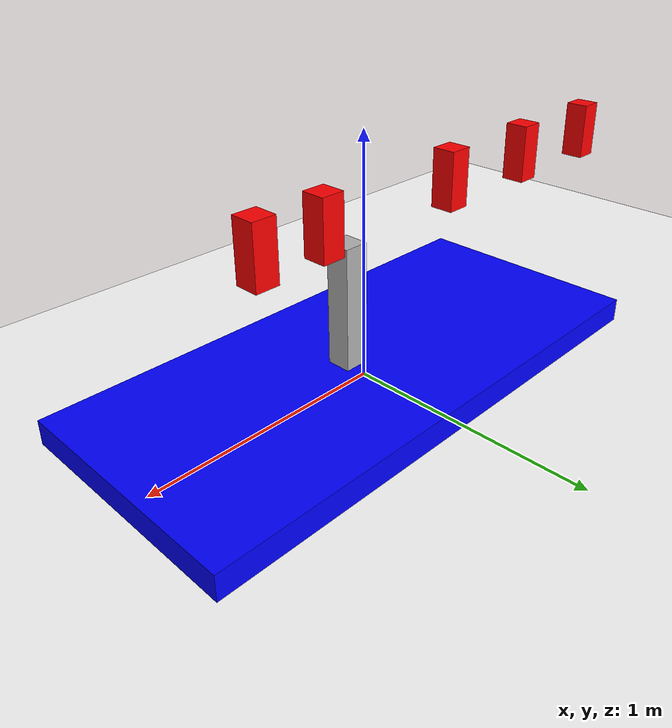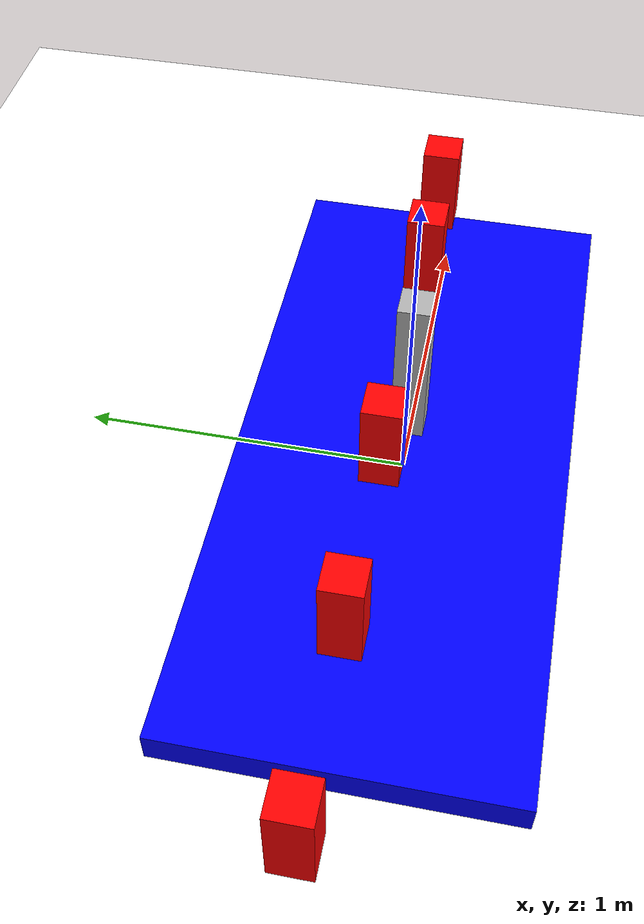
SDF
<?xml version="1.0" ?>
<sdf version="1.6">
  <world name="default">
    <physics name="fast" type="ignored">
      <real_time_factor>0</real_time_factor>
    </physics>

    <model name="ground_plane">
      <static>true</static>
      <link name="link">
        <pose>0 0 -0.5 0 0 0</pose>
        <collision name="collision">
          <geometry>
            <box>
              <size>100 100 1</size>
            </box>
          </geometry>
          <surface>
            <friction>
              <ode>
                <mu>100</mu>
                <mu2>50</mu2>
              </ode>
            </friction>
          </surface>
        </collision>
        <visual name="visual">
          <cast_shadows>false</cast_shadows>
          <geometry>
            <box>
              <size>100 100 1</size>
            </box>
          </geometry>
          <material>
            <ambient>1 1 1 1</ambient>
            <diffuse>1 1 1 1</diffuse>
            <specular>1 1 1 1</specular>
          </material>
        </visual>
      </link>
    </model>
    <model name="prismatic_model">
        <!-- A Heavy base keeps the joints from falling over -->
        <link name="heavy_base">
            <!-- position the base such that the bottom touches the floor -->
            <pose>0 0 0.05 0 0 0</pose>
            <inertial>
                <mass>100</mass> <!-- kg -->
                <inertia>
                    <!-- (mass / 12) * (y*y + z*z) -->
                    <ixx>8.4167</ixx>
                    <ixy>0</ixy>
                    <ixz>0</ixz>
                    <!-- (mass / 12) * (x*x + z*z) -->
                    <iyy>40.417</iyy>
                    <iyz>0</iyz>
                    <!-- (mass / 12) * (y*y + x*x) -->
                    <izz>48.667</izz>
                </inertia>
            </inertial>
            <!-- Same geometry as visual -->
            <collision name="heavy_base_collision">
                <geometry>
                    <box>
                        <size>2.2 1 0.1</size>
                    </box>
                </geometry>
            </collision>
            <!-- Same geometry as collision -->
            <visual name="heavy_base_visual">
                <geometry>
                    <box>
                        <size>2.2 1 0.1</size>
                    </box>
                </geometry>
                <material>
                  <ambient>0 0 1 1</ambient>
                  <diffuse>0 0 1 1</diffuse>
                  <specular>0 0 1 1</specular>
                </material>
            </visual>
        </link>

        <link name="prismatic_base">
            <!-- Put the bottom of base on top of the heavy base -->
            <pose >0.09 0 0.35 0 0 0</pose>
            <inertial>
                <inertia>
                    <!-- (mass / 12) * (y*y + z*z) -->
                    <ixx>0.021667</ixx>
                    <ixy>0</ixy>
                    <ixz>0</ixz>
                    <!-- (mass / 12) * (x*x + z*z) -->
                    <iyy>0.021667</iyy>
                    <iyz>0</iyz>
                    <!-- (mass / 12) * (y*y + x*x) -->
                    <izz>0.0016667</izz>
                </inertia>
            </inertial>
            <!-- Same geometry as visual -->
            <collision name="prismatic_base_collision">
                <geometry>
                    <box>
                        <size>0.1 0.1 0.5</size>
                    </box>
                </geometry>
            </collision>
            <!-- Same geometry as collision -->
            <visual name="prismatic_base_visual">
                <geometry>
                    <box>
                        <size>0.1 0.1 0.5</size>
                    </box>
                </geometry>
                <material>
                  <ambient>0.7 0.7 0.7 1</ambient>
                  <diffuse>0.7 0.7 0.7 1</diffuse>
                  <specular>0.7 0.7 0.7 1</specular>
                </material>
            </visual>
        </link>

        <joint name="prismatic_base_to_heavy_base" type="fixed">
            <parent>heavy_base</parent>
            <child>prismatic_base</child>
        </joint>

        <link name="prismatic_slide">
            <!-- Put the slide near the top of the base -->
            <pose >0.2 0 0.70 0 0 0</pose>
            <inertial>
                <inertia>
                    <!-- (mass / 12) * (y*y + z*z) -->
                    <ixx>0.0060417</ixx>
                    <ixy>0</ixy>
                    <ixz>0</ixz>
                    <!-- (mass / 12) * (x*x + z*z) -->
                    <iyy>0.0060417</iyy>
                    <iyz>0</iyz>
                    <!-- (mass / 12) * (y*y + x*x) -->
                    <izz>0.0016667</izz>
                </inertia>
            </inertial>
            <!-- Same geometry as visual -->
            <collision name="prismatic_slide_collision">
                <geometry>
                    <box>
                        <size>0.1 0.1 0.25</size>
                    </box>
                </geometry>
            </collision>
            <!-- Same geometry as collision -->
            <visual name="prismatic_slide_visual">
                <geometry>
                    <box>
                        <size>0.1 0.1 0.25</size>
                    </box>
                </geometry>
                <material>
                  <ambient>1 0 0 1</ambient>
                  <diffuse>1 0 0 1</diffuse>
                  <specular>1 0 0 1</specular>
                </material>
            </visual>
        </link>
`
        <link name="prismatic_slide_2">
            <!-- Put the slide near the top of the base -->
            <pose >0.5 0 0.70 0 0 0</pose>
            <inertial>
                <inertia>
                    <!-- (mass / 12) * (y*y + z*z) -->
                    <ixx>0.0060417</ixx>
                    <ixy>0</ixy>
                    <ixz>0</ixz>
                    <!-- (mass / 12) * (x*x + z*z) -->
                    <iyy>0.0060417</iyy>
                    <iyz>0</iyz>
                    <!-- (mass / 12) * (y*y + x*x) -->
                    <izz>0.0016667</izz>
                </inertia>
            </inertial>
            <!-- Same geometry as visual -->
            <collision name="prismatic_slide_collision">
                <geometry>
                    <box>
                        <size>0.1 0.1 0.25</size>
                    </box>
                </geometry>
            </collision>
            <!-- Same geometry as collision -->
            <visual name="prismatic_slide_visual">
                <geometry>
                    <box>
                        <size>0.1 0.1 0.25</size>
                    </box>
                </geometry>
                <material>
                  <ambient>1 0 0 1</ambient>
                  <diffuse>1 0 0 1</diffuse>
                  <specular>1 0 0 1</specular>
                </material>
            </visual>
        </link>

        <link name="revolute_link_1">
            <!-- Put the slide near the top of the base -->
            <pose >-0.5 0 0.70 0 0 0</pose>
            <inertial>
                <inertia>
                    <!-- (mass / 12) * (y*y + z*z) -->
                    <ixx>0.0060417</ixx>
                    <ixy>0</ixy>
                    <ixz>0</ixz>
                    <!-- (mass / 12) * (x*x + z*z) -->
                    <iyy>0.0060417</iyy>
                    <iyz>0</iyz>
                    <!-- (mass / 12) * (y*y + x*x) -->
                    <izz>0.0016667</izz>
                </inertia>
            </inertial>
            <!-- Same geometry as visual -->
            <collision name="prismatic_slide_collision">
                <geometry>
                    <box>
                        <size>0.1 0.1 0.25</size>
                    </box>
                </geometry>
            </collision>
            <!-- Same geometry as collision -->
            <visual name="prismatic_slide_visual">
                <geometry>
                    <box>
                        <size>0.1 0.1 0.25</size>
                    </box>
                </geometry>
                <material>
                  <ambient>1 0 0 1</ambient>
                  <diffuse>1 0 0 1</diffuse>
                  <specular>1 0 0 1</specular>
                </material>
            </visual>
        </link>

        <link name="revolute_link_2">
            <!-- Put the slide near the top of the base -->
            <pose >-1 0 0.70 0 0 0</pose>
            <inertial>
                <inertia>
                    <!-- (mass / 12) * (y*y + z*z) -->
                    <ixx>0.0060417</ixx>
                    <ixy>0</ixy>
                    <ixz>0</ixz>
                    <!-- (mass / 12) * (x*x + z*z) -->
                    <iyy>0.0060417</iyy>
                    <iyz>0</iyz>
                    <!-- (mass / 12) * (y*y + x*x) -->
                    <izz>0.0016667</izz>
                </inertia>
            </inertial>
            <!-- Same geometry as visual -->
            <collision name="prismatic_slide_collision">
                <geometry>
                    <box>
                        <size>0.1 0.1 0.25</size>
                    </box>
                </geometry>
            </collision>
            <!-- Same geometry as collision -->
            <visual name="prismatic_slide_visual">
                <geometry>
                    <box>
                        <size>0.1 0.1 0.25</size>
                    </box>
                </geometry>
                <material>
                  <ambient>1 0 0 1</ambient>
                  <diffuse>1 0 0 1</diffuse>
                  <specular>1 0 0 1</specular>
                </material>
            </visual>
        </link>

        <link name="prismatic_slide_3">
            <!-- Put the slide near the top of the base -->
            <pose >-1.5 0 0.70 0 0 0</pose>
            <inertial>
                <inertia>
                    <!-- (mass / 12) * (y*y + z*z) -->
                    <ixx>0.0060417</ixx>
                    <ixy>0</ixy>
                    <ixz>0</ixz>
                    <!-- (mass / 12) * (x*x + z*z) -->
                    <iyy>0.0060417</iyy>
                    <iyz>0</iyz>
                    <!-- (mass / 12) * (y*y + x*x) -->
                    <izz>0.0016667</izz>
                </inertia>
            </inertial>
            <!-- Same geometry as visual -->
            <collision name="prismatic_slide_collision">
                <geometry>
                    <box>
                        <size>0.1 0.1 0.25</size>
                    </box>
                </geometry>
            </collision>
            <!-- Same geometry as collision -->
            <visual name="prismatic_slide_visual">
                <geometry>
                    <box>
                        <size>0.1 0.1 0.25</size>
                    </box>
                </geometry>
                <material>
                  <ambient>1 0 0 1</ambient>
                  <diffuse>1 0 0 1</diffuse>
                  <specular>1 0 0 1</specular>
                </material>
            </visual>
        </link>

        <joint name="prismatic_joint_1" type="prismatic">
            <parent>prismatic_base</parent>
            <child>prismatic_slide</child>
            <axis>
                <xyz>0 0 1</xyz>
                <!-- Make it springy to keep the demo moving -->
                <limit>
                    <lower>-0.25</lower>
                    <upper>0.25</upper>
                </limit>
                <dynamics>
                    <spring_stiffness>50</spring_stiffness>
                </dynamics>
            </axis>
        </joint>

        <joint name="prismatic_joint_2" type="prismatic">
            <parent>prismatic_base</parent>
            <child>prismatic_slide_2</child>
            <axis>
                <xyz>0 0 1</xyz>
                <!-- Make it springy to keep the demo moving -->
                <limit>
                    <lower>-0.25</lower>
                    <upper>0.25</upper>
                </limit>
                <dynamics>
                    <spring_stiffness>100</spring_stiffness>
                </dynamics>
            </axis>
        </joint>

        <joint name="revolute_joint_1" type="revolute">
           <parent>prismatic_base</parent>
           <child>revolute_link_1</child>
           <axis>
             <xyz>1.0 0 0</xyz>
             <dynamics>
               <damping>3.0</damping>
             </dynamics>
           </axis>
        </joint>

        <joint name="revolute_joint_2" type="revolute">
           <parent>prismatic_base</parent>
           <child>revolute_link_2</child>
           <axis>
             <xyz>1.0 0 0</xyz>
             <dynamics>
               <damping>3.0</damping>
             </dynamics>
           </axis>
        </joint>

        <joint name="prismatic_joint_3" type="prismatic">
            <parent>prismatic_base</parent>
            <child>prismatic_slide_3</child>
            <axis>
                <xyz>0 0 1</xyz>
                <!-- Make it springy to keep the demo moving -->
                <dynamics>
                    <spring_stiffness>100</spring_stiffness>
                    <damping>10</damping>
                </dynamics>
            </axis>
        </joint>

    </model>
  </world>
</sdf>
